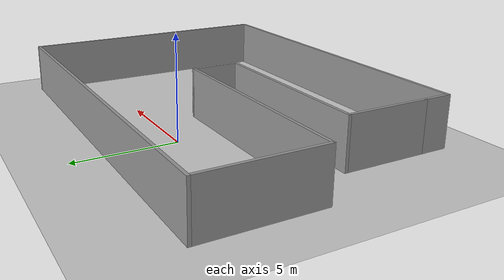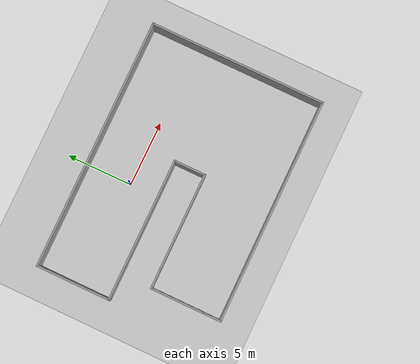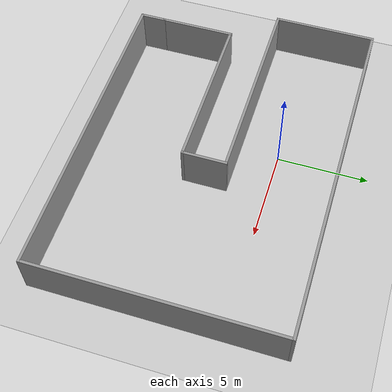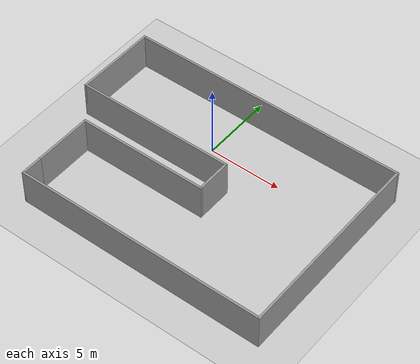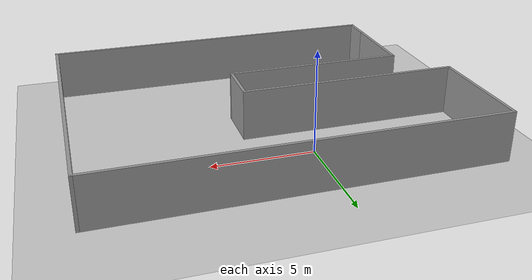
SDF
<sdf version="1.6">
 <world name="default">
  <model name="ground_plane">
   <static>1</static>
   <link name="link">
    <collision name="collision">
     <geometry><plane><normal>0 0 1</normal><size>100 100</size></plane></geometry>
     <surface><friction><ode><mu>100</mu><mu2>50</mu2></ode></friction></surface>
    </collision>
    <visual name="visual">
     <cast_shadows>0</cast_shadows>
     <geometry><plane><normal>0 0 1</normal><size>100 100</size></plane></geometry>
     <material>
      <script><uri>file://media/materials/scripts/gazebo.material</uri><name>Gazebo/Grey</name></script>
     </material>
    </visual>
   </link>
  </model>
  <light name="sun" type="directional">
   <pose>0 0 10 0 -0 0</pose>
   <diffuse>0.8 0.8 0.8 1</diffuse>
   <specular>0.2 0.2 0.2 1</specular>
   <attenuation>
    <range>1000</range>
    <constant>0.9</constant>
    <linear>0.01</linear>
    <quadratic>0.001</quadratic>
   </attenuation>
   <direction>-0.5 0.1 -0.9</direction>
  </light>
  <gravity>0 0 -9.8</gravity>
  <magnetic_field>6e-06 2.3e-05 -4.2e-05</magnetic_field>
  <atmosphere type="adiabatic"/>
  <physics name="default_physics" default="0" type="ode">
   <max_step_size>0.001</max_step_size>
   <real_time_factor>1</real_time_factor>
   <real_time_update_rate>1000</real_time_update_rate>
  </physics>
  <scene><ambient>0.4 0.4 0.4 1</ambient><background>0.7 0.7 0.7 1</background><shadows>1</shadows></scene>
  <spherical_coordinates>
   <surface_model>EARTH_WGS84</surface_model>
   <latitude_deg>0</latitude_deg>
   <longitude_deg>0</longitude_deg>
   <elevation>0</elevation>
   <heading_deg>0</heading_deg>
  </spherical_coordinates>
  <model name="model1">
   <pose>1.45281 -3.29379 0 0 -0 0</pose>
   <link name="Wall_15">
    <collision name="Wall_15_Collision">
     <geometry><box><size>1.5 0.15 2.5</size></box></geometry>
     <pose>0 0 1.25 0 -0 0</pose>
    </collision>
    <visual name="Wall_15_Visual">
     <pose>0 0 1.25 0 -0 0</pose>
     <geometry><box><size>1.5 0.15 2.5</size></box></geometry>
     <material>
      <script><uri>file://media/materials/scripts/gazebo.material</uri><name>Gazebo/Grey</name></script>
      <ambient>1 1 1 1</ambient>
     </material>
    </visual>
    <pose>-7.55 -6 0 0 0 -1.5708</pose>
   </link>
   <link name="Wall_16">
    <collision name="Wall_16_Collision">
     <geometry><box><size>17.25 0.15 2.5</size></box></geometry>
     <pose>0 0 1.25 0 -0 0</pose>
    </collision>
    <visual name="Wall_16_Visual">
     <pose>0 0 1.25 0 -0 0</pose>
     <geometry><box><size>17.25 0.15 2.5</size></box></geometry>
     <material>
      <script><uri>file://media/materials/scripts/gazebo.material</uri><name>Gazebo/Grey</name></script>
      <ambient>1 1 1 1</ambient>
     </material>
    </visual>
    <pose>1 -6.675 0 0 -0 0</pose>
   </link>
   <link name="Wall_19">
    <collision name="Wall_19_Collision">
     <geometry><box><size>13.5 0.15 2.5</size></box></geometry>
     <pose>0 0 1.25 0 -0 0</pose>
    </collision>
    <visual name="Wall_19_Visual">
     <pose>0 0 1.25 0 -0 0</pose>
     <geometry><box><size>13.5 0.15 2.5</size></box></geometry>
     <material>
      <script><uri>file://media/materials/scripts/gazebo.material</uri><name>Gazebo/Grey</name></script>
      <ambient>1 1 1 1</ambient>
     </material>
    </visual>
    <pose>9.55 0 0 0 -0 1.5708</pose>
   </link>
   <link name="Wall_20">
    <collision name="Wall_20_Collision">
     <geometry><box><size>19.25 0.15 2.5</size></box></geometry>
     <pose>0 0 1.25 0 -0 0</pose>
    </collision>
    <visual name="Wall_20_Visual">
     <pose>0 0 1.25 0 -0 0</pose>
     <geometry><box><size>19.25 0.15 2.5</size></box></geometry>
     <material>
      <script><uri>file://media/materials/scripts/gazebo.material</uri><name>Gazebo/Grey</name></script>
      <ambient>1 1 1 1</ambient>
     </material>
    </visual>
    <pose>0 6.675 0 0 -0 3.14159</pose>
   </link>
   <link name="Wall_23">
    <collision name="Wall_23_Collision">
     <geometry><box><size>5.75 0.15 2.5</size></box></geometry>
     <pose>0 0 1.25 0 -0 0</pose>
    </collision>
    <visual name="Wall_23_Visual">
     <pose>0 0 1.25 0 -0 0</pose>
     <geometry><box><size>5.75 0.15 2.5</size></box></geometry>
     <material>
      <script><uri>file://media/materials/scripts/gazebo.material</uri><name>Gazebo/Grey</name></script>
      <ambient>1 1 1 1</ambient>
     </material>
    </visual>
    <pose>-9.55 3.875 0 0 0 -1.5708</pose>
   </link>
   <link name="Wall_24">
    <collision name="Wall_24_Collision">
     <geometry><box><size>11 0.15 2.5</size></box></geometry>
     <pose>0 0 1.25 0 -0 0</pose>
    </collision>
    <visual name="Wall_24_Visual">
     <pose>0 0 1.25 0 -0 0</pose>
     <geometry><box><size>11 0.15 2.5</size></box></geometry>
     <material>
      <script><uri>file://media/materials/scripts/gazebo.material</uri><name>Gazebo/Grey</name></script>
      <ambient>1 1 1 1</ambient>
     </material>
    </visual>
    <pose>-4.125 1.075 0 0 -0 0</pose>
   </link>
   <link name="Wall_25">
    <collision name="Wall_25_Collision">
     <geometry><box><size>2.5 0.15 2.5</size></box></geometry>
     <pose>0 0 1.25 0 -0 0</pose>
    </collision>
    <visual name="Wall_25_Visual">
     <pose>0 0 1.25 0 -0 0</pose>
     <geometry><box><size>2.5 0.15 2.5</size></box></geometry>
     <material>
      <script><uri>file://media/materials/scripts/gazebo.material</uri><name>Gazebo/Grey</name></script>
      <ambient>1 1 1 1</ambient>
     </material>
    </visual>
    <pose>1.3 -0.1 0 0 0 -1.5708</pose>
   </link>
   <link name="Wall_26">
    <collision name="Wall_26_Collision">
     <geometry><box><size>9 0.15 2.5</size></box></geometry>
     <pose>0 0 1.25 0 -0 0</pose>
    </collision>
    <visual name="Wall_26_Visual">
     <pose>0 0 1.25 0 -0 0</pose>
     <geometry><box><size>9 0.15 2.5</size></box></geometry>
     <material>
      <script><uri>file://media/materials/scripts/gazebo.material</uri><name>Gazebo/Grey</name></script>
      <ambient>1 1 1 1</ambient>
     </material>
    </visual>
    <pose>-3.125 -1.275 0 0 -0 3.14159</pose>
   </link>
   <link name="Wall_27">
    <collision name="Wall_27_Collision">
     <geometry><box><size>4.2 0.15 2.5</size></box></geometry>
     <pose>0 0 1.25 0 -0 0</pose>
    </collision>
    <visual name="Wall_27_Visual">
     <pose>0 0 1.25 0 -0 0</pose>
     <geometry><box><size>4.2 0.15 2.5</size></box></geometry>
     <material>
      <script><uri>file://media/materials/scripts/gazebo.material</uri><name>Gazebo/Grey</name></script>
      <ambient>1 1 1 1</ambient>
     </material>
    </visual>
    <pose>-7.55 -3.3 0 0 0 -1.5708</pose>
   </link>
   <static>1</static>
  </model>
  <light name="user_point_light_0" type="point">
   <pose>4.26479 -3.34445 1 0 -0 0</pose>
   <diffuse>0.5 0.5 0.5 1</diffuse>
   <specular>0.1 0.1 0.1 1</specular>
   <attenuation>
    <range>20</range>
    <constant>0.5</constant>
    <linear>0.01</linear>
    <quadratic>0.001</quadratic>
   </attenuation>
   <cast_shadows>0</cast_shadows>
   <direction>0 0 -1</direction>
  </light>
 </world>
</sdf>
